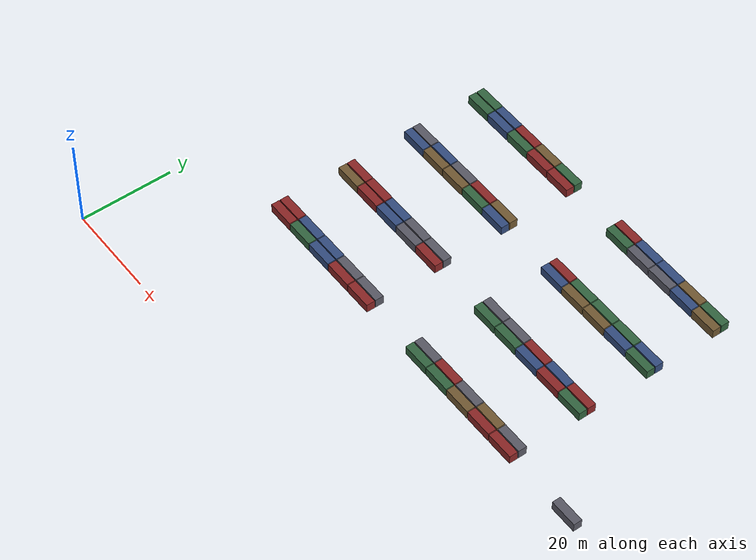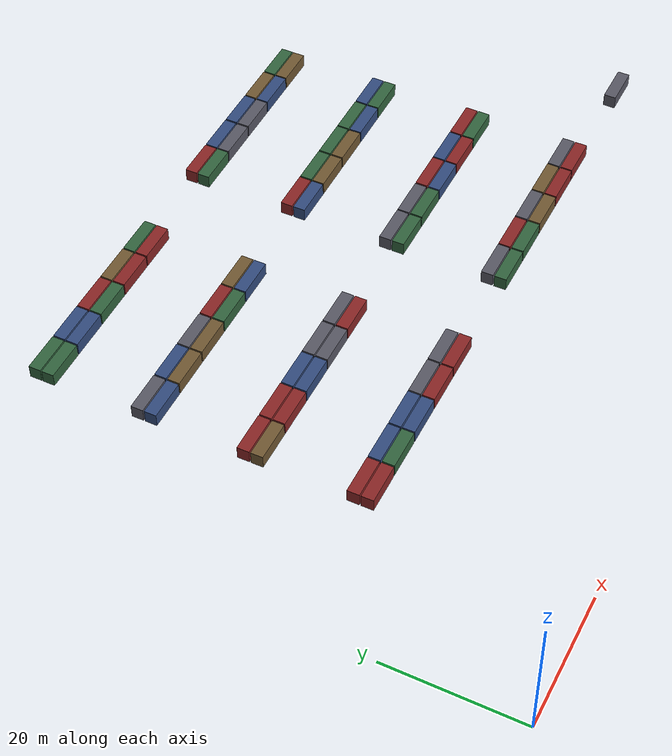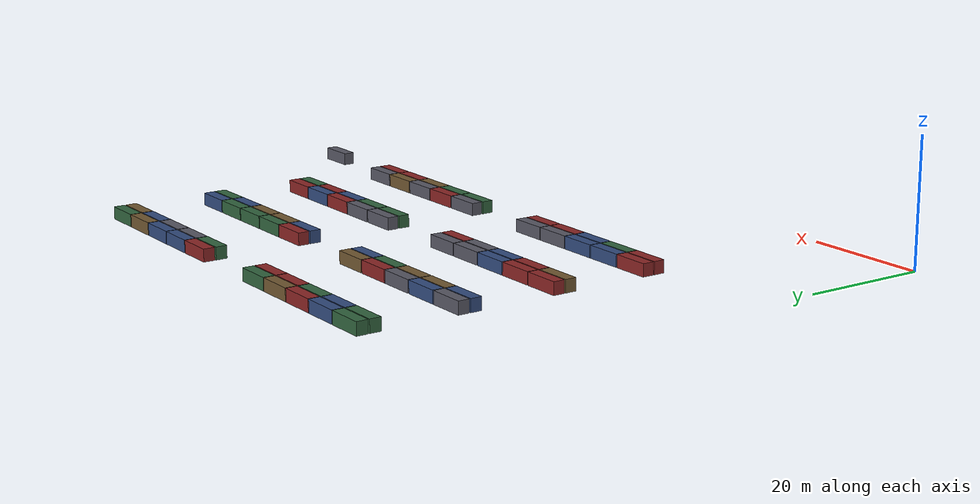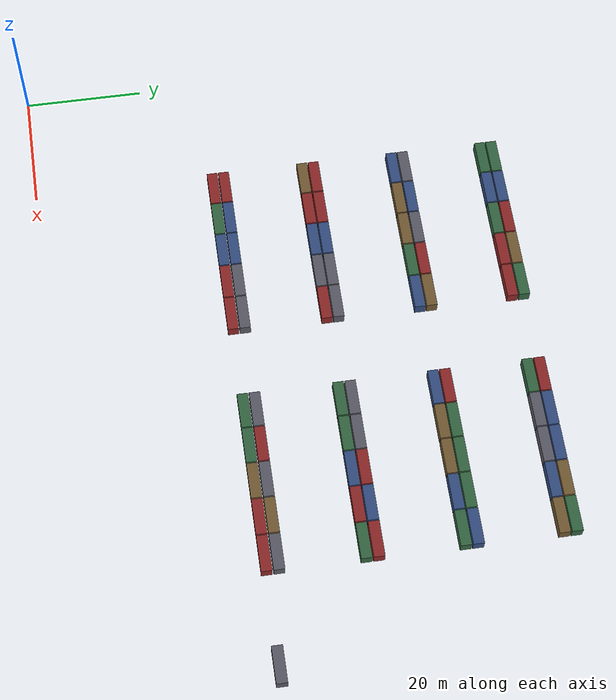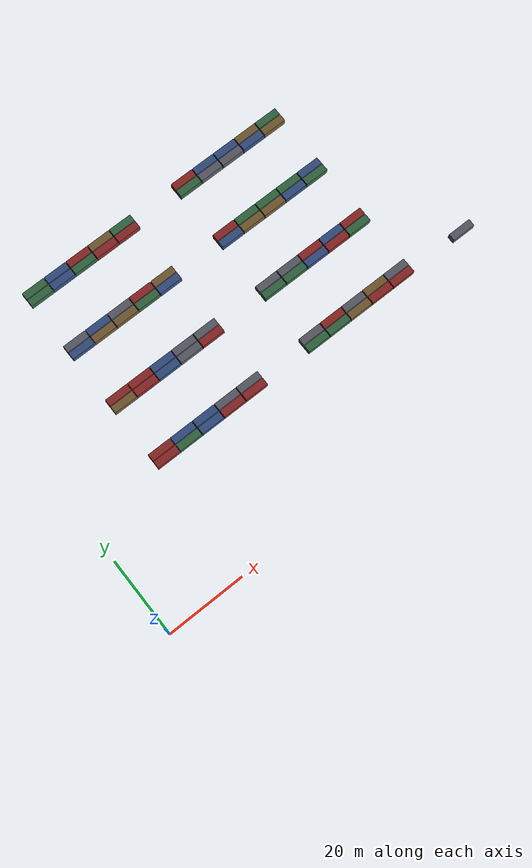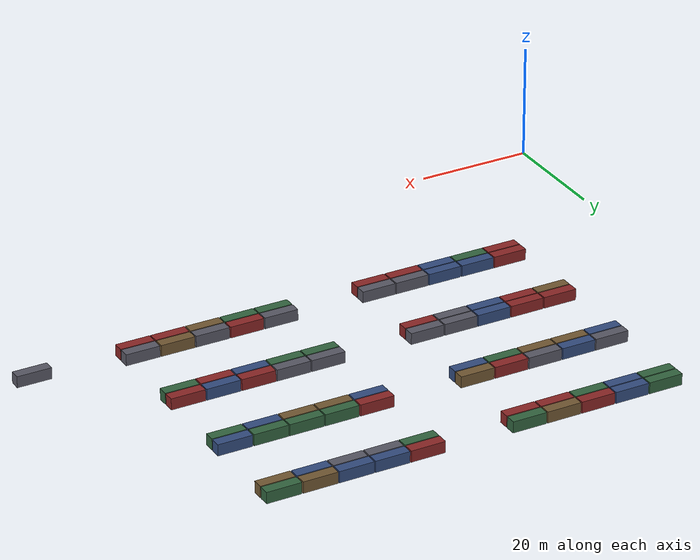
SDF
<sdf version="1.8">
 <world name="port">
  <model name="container_00_00_0_0">
   <pose>23.000 30.900 1.050 0 0 0</pose>
   <link name="link">
    <inertial>
     <mass>2300.0</mass>
     <inertia><ixx>1387.67</ixx><ixy>0</ixy><ixz>0</ixz><iyy>7666.67</iyy><iyz>0</iyz><izz>7521.0</izz></inertia>
    </inertial>
    <collision name="collision"><geometry><box><size>6.0 1.8 2.0</size></box></geometry></collision>
    <visual name="visual">
     <geometry><box><size>6.0 1.8 2.0</size></box></geometry>
     <material><ambient>0.55 0.15 0.15 1</ambient><diffuse>0.55 0.15 0.15 1</diffuse></material>
    </visual>
   </link>
  </model>
  <model name="container_00_00_0_1">
   <pose>23.000 32.900 1.050 0 0 0</pose>
   <link name="link">
    <inertial>
     <mass>2300.0</mass>
     <inertia><ixx>1387.67</ixx><ixy>0</ixy><ixz>0</ixz><iyy>7666.67</iyy><iyz>0</iyz><izz>7521.0</izz></inertia>
    </inertial>
    <collision name="collision"><geometry><box><size>6.0 1.8 2.0</size></box></geometry></collision>
    <visual name="visual">
     <geometry><box><size>6.0 1.8 2.0</size></box></geometry>
     <material><ambient>0.55 0.15 0.15 1</ambient><diffuse>0.55 0.15 0.15 1</diffuse></material>
    </visual>
   </link>
  </model>
  <model name="container_00_00_1_0">
   <pose>29.200 30.900 1.050 0 0 0</pose>
   <link name="link">
    <inertial>
     <mass>2300.0</mass>
     <inertia><ixx>1387.67</ixx><ixy>0</ixy><ixz>0</ixz><iyy>7666.67</iyy><iyz>0</iyz><izz>7521.0</izz></inertia>
    </inertial>
    <collision name="collision"><geometry><box><size>6.0 1.8 2.0</size></box></geometry></collision>
    <visual name="visual">
     <geometry><box><size>6.0 1.8 2.0</size></box></geometry>
     <material><ambient>0.2 0.4 0.25 1</ambient><diffuse>0.2 0.4 0.25 1</diffuse></material>
    </visual>
   </link>
  </model>
  <model name="container_00_00_1_1">
   <pose>29.200 32.900 1.050 0 0 0</pose>
   <link name="link">
    <inertial>
     <mass>2300.0</mass>
     <inertia><ixx>1387.67</ixx><ixy>0</ixy><ixz>0</ixz><iyy>7666.67</iyy><iyz>0</iyz><izz>7521.0</izz></inertia>
    </inertial>
    <collision name="collision"><geometry><box><size>6.0 1.8 2.0</size></box></geometry></collision>
    <visual name="visual">
     <geometry><box><size>6.0 1.8 2.0</size></box></geometry>
     <material><ambient>0.2 0.3 0.5 1</ambient><diffuse>0.2 0.3 0.5 1</diffuse></material>
    </visual>
   </link>
  </model>
  <model name="container_00_00_2_0">
   <pose>35.400 30.900 1.050 0 0 0</pose>
   <link name="link">
    <inertial>
     <mass>2300.0</mass>
     <inertia><ixx>1387.67</ixx><ixy>0</ixy><ixz>0</ixz><iyy>7666.67</iyy><iyz>0</iyz><izz>7521.0</izz></inertia>
    </inertial>
    <collision name="collision"><geometry><box><size>6.0 1.8 2.0</size></box></geometry></collision>
    <visual name="visual">
     <geometry><box><size>6.0 1.8 2.0</size></box></geometry>
     <material><ambient>0.2 0.3 0.5 1</ambient><diffuse>0.2 0.3 0.5 1</diffuse></material>
    </visual>
   </link>
  </model>
  <model name="container_00_00_2_1">
   <pose>35.400 32.900 1.050 0 0 0</pose>
   <link name="link">
    <inertial>
     <mass>2300.0</mass>
     <inertia><ixx>1387.67</ixx><ixy>0</ixy><ixz>0</ixz><iyy>7666.67</iyy><iyz>0</iyz><izz>7521.0</izz></inertia>
    </inertial>
    <collision name="collision"><geometry><box><size>6.0 1.8 2.0</size></box></geometry></collision>
    <visual name="visual">
     <geometry><box><size>6.0 1.8 2.0</size></box></geometry>
     <material><ambient>0.2 0.3 0.5 1</ambient><diffuse>0.2 0.3 0.5 1</diffuse></material>
    </visual>
   </link>
  </model>
  <model name="container_00_00_3_0">
   <pose>41.600 30.900 1.050 0 0 0</pose>
   <link name="link">
    <inertial>
     <mass>2300.0</mass>
     <inertia><ixx>1387.67</ixx><ixy>0</ixy><ixz>0</ixz><iyy>7666.67</iyy><iyz>0</iyz><izz>7521.0</izz></inertia>
    </inertial>
    <collision name="collision"><geometry><box><size>6.0 1.8 2.0</size></box></geometry></collision>
    <visual name="visual">
     <geometry><box><size>6.0 1.8 2.0</size></box></geometry>
     <material><ambient>0.55 0.15 0.15 1</ambient><diffuse>0.55 0.15 0.15 1</diffuse></material>
    </visual>
   </link>
  </model>
  <model name="container_00_00_3_1">
   <pose>41.600 32.900 1.050 0 0 0</pose>
   <link name="link">
    <inertial>
     <mass>2300.0</mass>
     <inertia><ixx>1387.67</ixx><ixy>0</ixy><ixz>0</ixz><iyy>7666.67</iyy><iyz>0</iyz><izz>7521.0</izz></inertia>
    </inertial>
    <collision name="collision"><geometry><box><size>6.0 1.8 2.0</size></box></geometry></collision>
    <visual name="visual">
     <geometry><box><size>6.0 1.8 2.0</size></box></geometry>
     <material><ambient>0.35 0.35 0.4 1</ambient><diffuse>0.35 0.35 0.4 1</diffuse></material>
    </visual>
   </link>
  </model>
  <model name="container_00_00_4_0">
   <pose>47.800 30.900 1.050 0 0 0</pose>
   <link name="link">
    <inertial>
     <mass>2300.0</mass>
     <inertia><ixx>1387.67</ixx><ixy>0</ixy><ixz>0</ixz><iyy>7666.67</iyy><iyz>0</iyz><izz>7521.0</izz></inertia>
    </inertial>
    <collision name="collision"><geometry><box><size>6.0 1.8 2.0</size></box></geometry></collision>
    <visual name="visual">
     <geometry><box><size>6.0 1.8 2.0</size></box></geometry>
     <material><ambient>0.55 0.15 0.15 1</ambient><diffuse>0.55 0.15 0.15 1</diffuse></material>
    </visual>
   </link>
  </model>
  <model name="container_00_00_4_1">
   <pose>47.800 32.900 1.050 0 0 0</pose>
   <link name="link">
    <inertial>
     <mass>2300.0</mass>
     <inertia><ixx>1387.67</ixx><ixy>0</ixy><ixz>0</ixz><iyy>7666.67</iyy><iyz>0</iyz><izz>7521.0</izz></inertia>
    </inertial>
    <collision name="collision"><geometry><box><size>6.0 1.8 2.0</size></box></geometry></collision>
    <visual name="visual">
     <geometry><box><size>6.0 1.8 2.0</size></box></geometry>
     <material><ambient>0.35 0.35 0.4 1</ambient><diffuse>0.35 0.35 0.4 1</diffuse></material>
    </visual>
   </link>
  </model>
  <model name="container_00_01_0_0">
   <pose>23.000 46.700 1.050 0 0 0</pose>
   <link name="link">
    <inertial>
     <mass>2300.0</mass>
     <inertia><ixx>1387.67</ixx><ixy>0</ixy><ixz>0</ixz><iyy>7666.67</iyy><iyz>0</iyz><izz>7521.0</izz></inertia>
    </inertial>
    <collision name="collision"><geometry><box><size>6.0 1.8 2.0</size></box></geometry></collision>
    <visual name="visual">
     <geometry><box><size>6.0 1.8 2.0</size></box></geometry>
     <material><ambient>0.45 0.35 0.2 1</ambient><diffuse>0.45 0.35 0.2 1</diffuse></material>
    </visual>
   </link>
  </model>
  <model name="container_00_01_0_1">
   <pose>23.000 48.700 1.050 0 0 0</pose>
   <link name="link">
    <inertial>
     <mass>2300.0</mass>
     <inertia><ixx>1387.67</ixx><ixy>0</ixy><ixz>0</ixz><iyy>7666.67</iyy><iyz>0</iyz><izz>7521.0</izz></inertia>
    </inertial>
    <collision name="collision"><geometry><box><size>6.0 1.8 2.0</size></box></geometry></collision>
    <visual name="visual">
     <geometry><box><size>6.0 1.8 2.0</size></box></geometry>
     <material><ambient>0.55 0.15 0.15 1</ambient><diffuse>0.55 0.15 0.15 1</diffuse></material>
    </visual>
   </link>
  </model>
  <model name="container_00_01_1_0">
   <pose>29.200 46.700 1.050 0 0 0</pose>
   <link name="link">
    <inertial>
     <mass>2300.0</mass>
     <inertia><ixx>1387.67</ixx><ixy>0</ixy><ixz>0</ixz><iyy>7666.67</iyy><iyz>0</iyz><izz>7521.0</izz></inertia>
    </inertial>
    <collision name="collision"><geometry><box><size>6.0 1.8 2.0</size></box></geometry></collision>
    <visual name="visual">
     <geometry><box><size>6.0 1.8 2.0</size></box></geometry>
     <material><ambient>0.55 0.15 0.15 1</ambient><diffuse>0.55 0.15 0.15 1</diffuse></material>
    </visual>
   </link>
  </model>
  <model name="container_00_01_1_1">
   <pose>29.200 48.700 1.050 0 0 0</pose>
   <link name="link">
    <inertial>
     <mass>2300.0</mass>
     <inertia><ixx>1387.67</ixx><ixy>0</ixy><ixz>0</ixz><iyy>7666.67</iyy><iyz>0</iyz><izz>7521.0</izz></inertia>
    </inertial>
    <collision name="collision"><geometry><box><size>6.0 1.8 2.0</size></box></geometry></collision>
    <visual name="visual">
     <geometry><box><size>6.0 1.8 2.0</size></box></geometry>
     <material><ambient>0.55 0.15 0.15 1</ambient><diffuse>0.55 0.15 0.15 1</diffuse></material>
    </visual>
   </link>
  </model>
  <model name="container_00_01_2_0">
   <pose>35.400 46.700 1.050 0 0 0</pose>
   <link name="link">
    <inertial>
     <mass>2300.0</mass>
     <inertia><ixx>1387.67</ixx><ixy>0</ixy><ixz>0</ixz><iyy>7666.67</iyy><iyz>0</iyz><izz>7521.0</izz></inertia>
    </inertial>
    <collision name="collision"><geometry><box><size>6.0 1.8 2.0</size></box></geometry></collision>
    <visual name="visual">
     <geometry><box><size>6.0 1.8 2.0</size></box></geometry>
     <material><ambient>0.2 0.3 0.5 1</ambient><diffuse>0.2 0.3 0.5 1</diffuse></material>
    </visual>
   </link>
  </model>
  <model name="container_00_01_2_1">
   <pose>35.400 48.700 1.050 0 0 0</pose>
   <link name="link">
    <inertial>
     <mass>2300.0</mass>
     <inertia><ixx>1387.67</ixx><ixy>0</ixy><ixz>0</ixz><iyy>7666.67</iyy><iyz>0</iyz><izz>7521.0</izz></inertia>
    </inertial>
    <collision name="collision"><geometry><box><size>6.0 1.8 2.0</size></box></geometry></collision>
    <visual name="visual">
     <geometry><box><size>6.0 1.8 2.0</size></box></geometry>
     <material><ambient>0.2 0.3 0.5 1</ambient><diffuse>0.2 0.3 0.5 1</diffuse></material>
    </visual>
   </link>
  </model>
  <model name="container_00_01_3_0">
   <pose>41.600 46.700 1.050 0 0 0</pose>
   <link name="link">
    <inertial>
     <mass>2300.0</mass>
     <inertia><ixx>1387.67</ixx><ixy>0</ixy><ixz>0</ixz><iyy>7666.67</iyy><iyz>0</iyz><izz>7521.0</izz></inertia>
    </inertial>
    <collision name="collision"><geometry><box><size>6.0 1.8 2.0</size></box></geometry></collision>
    <visual name="visual">
     <geometry><box><size>6.0 1.8 2.0</size></box></geometry>
     <material><ambient>0.35 0.35 0.4 1</ambient><diffuse>0.35 0.35 0.4 1</diffuse></material>
    </visual>
   </link>
  </model>
  <model name="container_00_01_3_1">
   <pose>41.600 48.700 1.050 0 0 0</pose>
   <link name="link">
    <inertial>
     <mass>2300.0</mass>
     <inertia><ixx>1387.67</ixx><ixy>0</ixy><ixz>0</ixz><iyy>7666.67</iyy><iyz>0</iyz><izz>7521.0</izz></inertia>
    </inertial>
    <collision name="collision"><geometry><box><size>6.0 1.8 2.0</size></box></geometry></collision>
    <visual name="visual">
     <geometry><box><size>6.0 1.8 2.0</size></box></geometry>
     <material><ambient>0.35 0.35 0.4 1</ambient><diffuse>0.35 0.35 0.4 1</diffuse></material>
    </visual>
   </link>
  </model>
  <model name="container_00_01_4_0">
   <pose>47.800 46.700 1.050 0 0 0</pose>
   <link name="link">
    <inertial>
     <mass>2300.0</mass>
     <inertia><ixx>1387.67</ixx><ixy>0</ixy><ixz>0</ixz><iyy>7666.67</iyy><iyz>0</iyz><izz>7521.0</izz></inertia>
    </inertial>
    <collision name="collision"><geometry><box><size>6.0 1.8 2.0</size></box></geometry></collision>
    <visual name="visual">
     <geometry><box><size>6.0 1.8 2.0</size></box></geometry>
     <material><ambient>0.55 0.15 0.15 1</ambient><diffuse>0.55 0.15 0.15 1</diffuse></material>
    </visual>
   </link>
  </model>
  <model name="container_00_01_4_1">
   <pose>47.800 48.700 1.050 0 0 0</pose>
   <link name="link">
    <inertial>
     <mass>2300.0</mass>
     <inertia><ixx>1387.67</ixx><ixy>0</ixy><ixz>0</ixz><iyy>7666.67</iyy><iyz>0</iyz><izz>7521.0</izz></inertia>
    </inertial>
    <collision name="collision"><geometry><box><size>6.0 1.8 2.0</size></box></geometry></collision>
    <visual name="visual">
     <geometry><box><size>6.0 1.8 2.0</size></box></geometry>
     <material><ambient>0.35 0.35 0.4 1</ambient><diffuse>0.35 0.35 0.4 1</diffuse></material>
    </visual>
   </link>
  </model>
  <model name="container_00_02_0_0">
   <pose>23.000 62.500 1.050 0 0 0</pose>
   <link name="link">
    <inertial>
     <mass>2300.0</mass>
     <inertia><ixx>1387.67</ixx><ixy>0</ixy><ixz>0</ixz><iyy>7666.67</iyy><iyz>0</iyz><izz>7521.0</izz></inertia>
    </inertial>
    <collision name="collision"><geometry><box><size>6.0 1.8 2.0</size></box></geometry></collision>
    <visual name="visual">
     <geometry><box><size>6.0 1.8 2.0</size></box></geometry>
     <material><ambient>0.2 0.3 0.5 1</ambient><diffuse>0.2 0.3 0.5 1</diffuse></material>
    </visual>
   </link>
  </model>
  <model name="container_00_02_0_1">
   <pose>23.000 64.500 1.050 0 0 0</pose>
   <link name="link">
    <inertial>
     <mass>2300.0</mass>
     <inertia><ixx>1387.67</ixx><ixy>0</ixy><ixz>0</ixz><iyy>7666.67</iyy><iyz>0</iyz><izz>7521.0</izz></inertia>
    </inertial>
    <collision name="collision"><geometry><box><size>6.0 1.8 2.0</size></box></geometry></collision>
    <visual name="visual">
     <geometry><box><size>6.0 1.8 2.0</size></box></geometry>
     <material><ambient>0.35 0.35 0.4 1</ambient><diffuse>0.35 0.35 0.4 1</diffuse></material>
    </visual>
   </link>
  </model>
  <model name="container_00_02_1_0">
   <pose>29.200 62.500 1.050 0 0 0</pose>
   <link name="link">
    <inertial>
     <mass>2300.0</mass>
     <inertia><ixx>1387.67</ixx><ixy>0</ixy><ixz>0</ixz><iyy>7666.67</iyy><iyz>0</iyz><izz>7521.0</izz></inertia>
    </inertial>
    <collision name="collision"><geometry><box><size>6.0 1.8 2.0</size></box></geometry></collision>
    <visual name="visual">
     <geometry><box><size>6.0 1.8 2.0</size></box></geometry>
     <material><ambient>0.45 0.35 0.2 1</ambient><diffuse>0.45 0.35 0.2 1</diffuse></material>
    </visual>
   </link>
  </model>
  <model name="container_00_02_1_1">
   <pose>29.200 64.500 1.050 0 0 0</pose>
   <link name="link">
    <inertial>
     <mass>2300.0</mass>
     <inertia><ixx>1387.67</ixx><ixy>0</ixy><ixz>0</ixz><iyy>7666.67</iyy><iyz>0</iyz><izz>7521.0</izz></inertia>
    </inertial>
    <collision name="collision"><geometry><box><size>6.0 1.8 2.0</size></box></geometry></collision>
    <visual name="visual">
     <geometry><box><size>6.0 1.8 2.0</size></box></geometry>
     <material><ambient>0.2 0.3 0.5 1</ambient><diffuse>0.2 0.3 0.5 1</diffuse></material>
    </visual>
   </link>
  </model>
  <model name="container_00_02_2_0">
   <pose>35.400 62.500 1.050 0 0 0</pose>
   <link name="link">
    <inertial>
     <mass>2300.0</mass>
     <inertia><ixx>1387.67</ixx><ixy>0</ixy><ixz>0</ixz><iyy>7666.67</iyy><iyz>0</iyz><izz>7521.0</izz></inertia>
    </inertial>
    <collision name="collision"><geometry><box><size>6.0 1.8 2.0</size></box></geometry></collision>
    <visual name="visual">
     <geometry><box><size>6.0 1.8 2.0</size></box></geometry>
     <material><ambient>0.45 0.35 0.2 1</ambient><diffuse>0.45 0.35 0.2 1</diffuse></material>
    </visual>
   </link>
  </model>
  <model name="container_00_02_2_1">
   <pose>35.400 64.500 1.050 0 0 0</pose>
   <link name="link">
    <inertial>
     <mass>2300.0</mass>
     <inertia><ixx>1387.67</ixx><ixy>0</ixy><ixz>0</ixz><iyy>7666.67</iyy><iyz>0</iyz><izz>7521.0</izz></inertia>
    </inertial>
    <collision name="collision"><geometry><box><size>6.0 1.8 2.0</size></box></geometry></collision>
    <visual name="visual">
     <geometry><box><size>6.0 1.8 2.0</size></box></geometry>
     <material><ambient>0.35 0.35 0.4 1</ambient><diffuse>0.35 0.35 0.4 1</diffuse></material>
    </visual>
   </link>
  </model>
  <model name="container_00_02_3_0">
   <pose>41.600 62.500 1.050 0 0 0</pose>
   <link name="link">
    <inertial>
     <mass>2300.0</mass>
     <inertia><ixx>1387.67</ixx><ixy>0</ixy><ixz>0</ixz><iyy>7666.67</iyy><iyz>0</iyz><izz>7521.0</izz></inertia>
    </inertial>
    <collision name="collision"><geometry><box><size>6.0 1.8 2.0</size></box></geometry></collision>
    <visual name="visual">
     <geometry><box><size>6.0 1.8 2.0</size></box></geometry>
     <material><ambient>0.2 0.4 0.25 1</ambient><diffuse>0.2 0.4 0.25 1</diffuse></material>
    </visual>
   </link>
  </model>
  <model name="container_00_02_3_1">
   <pose>41.600 64.500 1.050 0 0 0</pose>
   <link name="link">
    <inertial>
     <mass>2300.0</mass>
     <inertia><ixx>1387.67</ixx><ixy>0</ixy><ixz>0</ixz><iyy>7666.67</iyy><iyz>0</iyz><izz>7521.0</izz></inertia>
    </inertial>
    <collision name="collision"><geometry><box><size>6.0 1.8 2.0</size></box></geometry></collision>
    <visual name="visual">
     <geometry><box><size>6.0 1.8 2.0</size></box></geometry>
     <material><ambient>0.55 0.15 0.15 1</ambient><diffuse>0.55 0.15 0.15 1</diffuse></material>
    </visual>
   </link>
  </model>
  <model name="container_00_02_4_0">
   <pose>47.800 62.500 1.050 0 0 0</pose>
   <link name="link">
    <inertial>
     <mass>2300.0</mass>
     <inertia><ixx>1387.67</ixx><ixy>0</ixy><ixz>0</ixz><iyy>7666.67</iyy><iyz>0</iyz><izz>7521.0</izz></inertia>
    </inertial>
    <collision name="collision"><geometry><box><size>6.0 1.8 2.0</size></box></geometry></collision>
    <visual name="visual">
     <geometry><box><size>6.0 1.8 2.0</size></box></geometry>
     <material><ambient>0.2 0.3 0.5 1</ambient><diffuse>0.2 0.3 0.5 1</diffuse></material>
    </visual>
   </link>
  </model>
  <model name="container_00_02_4_1">
   <pose>47.800 64.500 1.050 0 0 0</pose>
   <link name="link">
    <inertial>
     <mass>2300.0</mass>
     <inertia><ixx>1387.67</ixx><ixy>0</ixy><ixz>0</ixz><iyy>7666.67</iyy><iyz>0</iyz><izz>7521.0</izz></inertia>
    </inertial>
    <collision name="collision"><geometry><box><size>6.0 1.8 2.0</size></box></geometry></collision>
    <visual name="visual">
     <geometry><box><size>6.0 1.8 2.0</size></box></geometry>
     <material><ambient>0.45 0.35 0.2 1</ambient><diffuse>0.45 0.35 0.2 1</diffuse></material>
    </visual>
   </link>
  </model>
  <model name="container_00_03_0_0">
   <pose>23.000 78.300 1.050 0 0 0</pose>
   <link name="link">
    <inertial>
     <mass>2300.0</mass>
     <inertia><ixx>1387.67</ixx><ixy>0</ixy><ixz>0</ixz><iyy>7666.67</iyy><iyz>0</iyz><izz>7521.0</izz></inertia>
    </inertial>
    <collision name="collision"><geometry><box><size>6.0 1.8 2.0</size></box></geometry></collision>
    <visual name="visual">
     <geometry><box><size>6.0 1.8 2.0</size></box></geometry>
     <material><ambient>0.2 0.4 0.25 1</ambient><diffuse>0.2 0.4 0.25 1</diffuse></material>
    </visual>
   </link>
  </model>
  <model name="container_00_03_0_1">
   <pose>23.000 80.300 1.050 0 0 0</pose>
   <link name="link">
    <inertial>
     <mass>2300.0</mass>
     <inertia><ixx>1387.67</ixx><ixy>0</ixy><ixz>0</ixz><iyy>7666.67</iyy><iyz>0</iyz><izz>7521.0</izz></inertia>
    </inertial>
    <collision name="collision"><geometry><box><size>6.0 1.8 2.0</size></box></geometry></collision>
    <visual name="visual">
     <geometry><box><size>6.0 1.8 2.0</size></box></geometry>
     <material><ambient>0.2 0.4 0.25 1</ambient><diffuse>0.2 0.4 0.25 1</diffuse></material>
    </visual>
   </link>
  </model>
  <model name="container_00_03_1_0">
   <pose>29.200 78.300 1.050 0 0 0</pose>
   <link name="link">
    <inertial>
     <mass>2300.0</mass>
     <inertia><ixx>1387.67</ixx><ixy>0</ixy><ixz>0</ixz><iyy>7666.67</iyy><iyz>0</iyz><izz>7521.0</izz></inertia>
    </inertial>
    <collision name="collision"><geometry><box><size>6.0 1.8 2.0</size></box></geometry></collision>
    <visual name="visual">
     <geometry><box><size>6.0 1.8 2.0</size></box></geometry>
     <material><ambient>0.2 0.3 0.5 1</ambient><diffuse>0.2 0.3 0.5 1</diffuse></material>
    </visual>
   </link>
  </model>
  <model name="container_00_03_1_1">
   <pose>29.200 80.300 1.050 0 0 0</pose>
   <link name="link">
    <inertial>
     <mass>2300.0</mass>
     <inertia><ixx>1387.67</ixx><ixy>0</ixy><ixz>0</ixz><iyy>7666.67</iyy><iyz>0</iyz><izz>7521.0</izz></inertia>
    </inertial>
    <collision name="collision"><geometry><box><size>6.0 1.8 2.0</size></box></geometry></collision>
    <visual name="visual">
     <geometry><box><size>6.0 1.8 2.0</size></box></geometry>
     <material><ambient>0.2 0.3 0.5 1</ambient><diffuse>0.2 0.3 0.5 1</diffuse></material>
    </visual>
   </link>
  </model>
  <model name="container_00_03_2_0">
   <pose>35.400 78.300 1.050 0 0 0</pose>
   <link name="link">
    <inertial>
     <mass>2300.0</mass>
     <inertia><ixx>1387.67</ixx><ixy>0</ixy><ixz>0</ixz><iyy>7666.67</iyy><iyz>0</iyz><izz>7521.0</izz></inertia>
    </inertial>
    <collision name="collision"><geometry><box><size>6.0 1.8 2.0</size></box></geometry></collision>
    <visual name="visual">
     <geometry><box><size>6.0 1.8 2.0</size></box></geometry>
     <material><ambient>0.2 0.4 0.25 1</ambient><diffuse>0.2 0.4 0.25 1</diffuse></material>
    </visual>
   </link>
  </model>
  <model name="container_00_03_2_1">
   <pose>35.400 80.300 1.050 0 0 0</pose>
   <link name="link">
    <inertial>
     <mass>2300.0</mass>
     <inertia><ixx>1387.67</ixx><ixy>0</ixy><ixz>0</ixz><iyy>7666.67</iyy><iyz>0</iyz><izz>7521.0</izz></inertia>
    </inertial>
    <collision name="collision"><geometry><box><size>6.0 1.8 2.0</size></box></geometry></collision>
    <visual name="visual">
     <geometry><box><size>6.0 1.8 2.0</size></box></geometry>
     <material><ambient>0.55 0.15 0.15 1</ambient><diffuse>0.55 0.15 0.15 1</diffuse></material>
    </visual>
   </link>
  </model>
  <model name="container_00_03_3_0">
   <pose>41.600 78.300 1.050 0 0 0</pose>
   <link name="link">
    <inertial>
     <mass>2300.0</mass>
     <inertia><ixx>1387.67</ixx><ixy>0</ixy><ixz>0</ixz><iyy>7666.67</iyy><iyz>0</iyz><izz>7521.0</izz></inertia>
    </inertial>
    <collision name="collision"><geometry><box><size>6.0 1.8 2.0</size></box></geometry></collision>
    <visual name="visual">
     <geometry><box><size>6.0 1.8 2.0</size></box></geometry>
     <material><ambient>0.55 0.15 0.15 1</ambient><diffuse>0.55 0.15 0.15 1</diffuse></material>
    </visual>
   </link>
  </model>
  <model name="container_00_03_3_1">
   <pose>41.600 80.300 1.050 0 0 0</pose>
   <link name="link">
    <inertial>
     <mass>2300.0</mass>
     <inertia><ixx>1387.67</ixx><ixy>0</ixy><ixz>0</ixz><iyy>7666.67</iyy><iyz>0</iyz><izz>7521.0</izz></inertia>
    </inertial>
    <collision name="collision"><geometry><box><size>6.0 1.8 2.0</size></box></geometry></collision>
    <visual name="visual">
     <geometry><box><size>6.0 1.8 2.0</size></box></geometry>
     <material><ambient>0.45 0.35 0.2 1</ambient><diffuse>0.45 0.35 0.2 1</diffuse></material>
    </visual>
   </link>
  </model>
  <model name="container_00_03_4_0">
   <pose>47.800 78.300 1.050 0 0 0</pose>
   <link name="link">
    <inertial>
     <mass>2300.0</mass>
     <inertia><ixx>1387.67</ixx><ixy>0</ixy><ixz>0</ixz><iyy>7666.67</iyy><iyz>0</iyz><izz>7521.0</izz></inertia>
    </inertial>
    <collision name="collision"><geometry><box><size>6.0 1.8 2.0</size></box></geometry></collision>
    <visual name="visual">
     <geometry><box><size>6.0 1.8 2.0</size></box></geometry>
     <material><ambient>0.55 0.15 0.15 1</ambient><diffuse>0.55 0.15 0.15 1</diffuse></material>
    </visual>
   </link>
  </model>
  <model name="container_00_03_4_1">
   <pose>47.800 80.300 1.050 0 0 0</pose>
   <link name="link">
    <inertial>
     <mass>2300.0</mass>
     <inertia><ixx>1387.67</ixx><ixy>0</ixy><ixz>0</ixz><iyy>7666.67</iyy><iyz>0</iyz><izz>7521.0</izz></inertia>
    </inertial>
    <collision name="collision"><geometry><box><size>6.0 1.8 2.0</size></box></geometry></collision>
    <visual name="visual">
     <geometry><box><size>6.0 1.8 2.0</size></box></geometry>
     <material><ambient>0.2 0.4 0.25 1</ambient><diffuse>0.2 0.4 0.25 1</diffuse></material>
    </visual>
   </link>
  </model>
  <model name="container_01_00_0_0">
   <pose>65.800 30.900 1.050 0 0 0</pose>
   <link name="link">
    <inertial>
     <mass>2300.0</mass>
     <inertia><ixx>1387.67</ixx><ixy>0</ixy><ixz>0</ixz><iyy>7666.67</iyy><iyz>0</iyz><izz>7521.0</izz></inertia>
    </inertial>
    <collision name="collision"><geometry><box><size>6.0 1.8 2.0</size></box></geometry></collision>
    <visual name="visual">
     <geometry><box><size>6.0 1.8 2.0</size></box></geometry>
     <material><ambient>0.2 0.4 0.25 1</ambient><diffuse>0.2 0.4 0.25 1</diffuse></material>
    </visual>
   </link>
  </model>
  <model name="container_01_00_0_1">
   <pose>65.800 32.900 1.050 0 0 0</pose>
   <link name="link">
    <inertial>
     <mass>2300.0</mass>
     <inertia><ixx>1387.67</ixx><ixy>0</ixy><ixz>0</ixz><iyy>7666.67</iyy><iyz>0</iyz><izz>7521.0</izz></inertia>
    </inertial>
    <collision name="collision"><geometry><box><size>6.0 1.8 2.0</size></box></geometry></collision>
    <visual name="visual">
     <geometry><box><size>6.0 1.8 2.0</size></box></geometry>
     <material><ambient>0.35 0.35 0.4 1</ambient><diffuse>0.35 0.35 0.4 1</diffuse></material>
    </visual>
   </link>
  </model>
  <model name="container_01_00_1_0">
   <pose>72.000 30.900 1.050 0 0 0</pose>
   <link name="link">
    <inertial>
     <mass>2300.0</mass>
     <inertia><ixx>1387.67</ixx><ixy>0</ixy><ixz>0</ixz><iyy>7666.67</iyy><iyz>0</iyz><izz>7521.0</izz></inertia>
    </inertial>
    <collision name="collision"><geometry><box><size>6.0 1.8 2.0</size></box></geometry></collision>
    <visual name="visual">
     <geometry><box><size>6.0 1.8 2.0</size></box></geometry>
     <material><ambient>0.2 0.4 0.25 1</ambient><diffuse>0.2 0.4 0.25 1</diffuse></material>
    </visual>
   </link>
  </model>
  <model name="container_01_00_1_1">
   <pose>72.000 32.900 1.050 0 0 0</pose>
   <link name="link">
    <inertial>
     <mass>2300.0</mass>
     <inertia><ixx>1387.67</ixx><ixy>0</ixy><ixz>0</ixz><iyy>7666.67</iyy><iyz>0</iyz><izz>7521.0</izz></inertia>
    </inertial>
    <collision name="collision"><geometry><box><size>6.0 1.8 2.0</size></box></geometry></collision>
    <visual name="visual">
     <geometry><box><size>6.0 1.8 2.0</size></box></geometry>
     <material><ambient>0.55 0.15 0.15 1</ambient><diffuse>0.55 0.15 0.15 1</diffuse></material>
    </visual>
   </link>
  </model>
  <model name="container_01_00_2_0">
   <pose>78.200 30.900 1.050 0 0 0</pose>
   <link name="link">
    <inertial>
     <mass>2300.0</mass>
     <inertia><ixx>1387.67</ixx><ixy>0</ixy><ixz>0</ixz><iyy>7666.67</iyy><iyz>0</iyz><izz>7521.0</izz></inertia>
    </inertial>
    <collision name="collision"><geometry><box><size>6.0 1.8 2.0</size></box></geometry></collision>
    <visual name="visual">
     <geometry><box><size>6.0 1.8 2.0</size></box></geometry>
     <material><ambient>0.45 0.35 0.2 1</ambient><diffuse>0.45 0.35 0.2 1</diffuse></material>
    </visual>
   </link>
  </model>
  <model name="container_01_00_2_1">
   <pose>78.200 32.900 1.050 0 0 0</pose>
   <link name="link">
    <inertial>
     <mass>2300.0</mass>
     <inertia><ixx>1387.67</ixx><ixy>0</ixy><ixz>0</ixz><iyy>7666.67</iyy><iyz>0</iyz><izz>7521.0</izz></inertia>
    </inertial>
    <collision name="collision"><geometry><box><size>6.0 1.8 2.0</size></box></geometry></collision>
    <visual name="visual">
     <geometry><box><size>6.0 1.8 2.0</size></box></geometry>
     <material><ambient>0.35 0.35 0.4 1</ambient><diffuse>0.35 0.35 0.4 1</diffuse></material>
    </visual>
   </link>
  </model>
  <model name="container_01_00_3_0">
   <pose>84.400 30.900 1.050 0 0 0</pose>
   <link name="link">
    <inertial>
     <mass>2300.0</mass>
     <inertia><ixx>1387.67</ixx><ixy>0</ixy><ixz>0</ixz><iyy>7666.67</iyy><iyz>0</iyz><izz>7521.0</izz></inertia>
    </inertial>
    <collision name="collision"><geometry><box><size>6.0 1.8 2.0</size></box></geometry></collision>
    <visual name="visual">
     <geometry><box><size>6.0 1.8 2.0</size></box></geometry>
     <material><ambient>0.55 0.15 0.15 1</ambient><diffuse>0.55 0.15 0.15 1</diffuse></material>
    </visual>
   </link>
  </model>
  <model name="container_01_00_3_1">
   <pose>84.400 32.900 1.050 0 0 0</pose>
   <link name="link">
    <inertial>
     <mass>2300.0</mass>
     <inertia><ixx>1387.67</ixx><ixy>0</ixy><ixz>0</ixz><iyy>7666.67</iyy><iyz>0</iyz><izz>7521.0</izz></inertia>
    </inertial>
    <collision name="collision"><geometry><box><size>6.0 1.8 2.0</size></box></geometry></collision>
    <visual name="visual">
     <geometry><box><size>6.0 1.8 2.0</size></box></geometry>
     <material><ambient>0.45 0.35 0.2 1</ambient><diffuse>0.45 0.35 0.2 1</diffuse></material>
    </visual>
   </link>
  </model>
  <model name="container_01_00_4_0">
   <pose>90.600 30.900 1.050 0 0 0</pose>
   <link name="link">
    <inertial>
     <mass>2300.0</mass>
     <inertia><ixx>1387.67</ixx><ixy>0</ixy><ixz>0</ixz><iyy>7666.67</iyy><iyz>0</iyz><izz>7521.0</izz></inertia>
    </inertial>
    <collision name="collision"><geometry><box><size>6.0 1.8 2.0</size></box></geometry></collision>
    <visual name="visual">
     <geometry><box><size>6.0 1.8 2.0</size></box></geometry>
     <material><ambient>0.55 0.15 0.15 1</ambient><diffuse>0.55 0.15 0.15 1</diffuse></material>
    </visual>
   </link>
  </model>
  <model name="container_01_00_4_1">
   <pose>90.600 32.900 1.050 0 0 0</pose>
   <link name="link">
    <inertial>
     <mass>2300.0</mass>
     <inertia><ixx>1387.67</ixx><ixy>0</ixy><ixz>0</ixz><iyy>7666.67</iyy><iyz>0</iyz><izz>7521.0</izz></inertia>
    </inertial>
    <collision name="collision"><geometry><box><size>6.0 1.8 2.0</size></box></geometry></collision>
    <visual name="visual">
     <geometry><box><size>6.0 1.8 2.0</size></box></geometry>
     <material><ambient>0.35 0.35 0.4 1</ambient><diffuse>0.35 0.35 0.4 1</diffuse></material>
    </visual>
   </link>
  </model>
  <model name="container_01_01_0_0">
   <pose>65.800 46.700 1.050 0 0 0</pose>
   <link name="link">
    <inertial>
     <mass>2300.0</mass>
     <inertia><ixx>1387.67</ixx><ixy>0</ixy><ixz>0</ixz><iyy>7666.67</iyy><iyz>0</iyz><izz>7521.0</izz></inertia>
    </inertial>
    <collision name="collision"><geometry><box><size>6.0 1.8 2.0</size></box></geometry></collision>
    <visual name="visual">
     <geometry><box><size>6.0 1.8 2.0</size></box></geometry>
     <material><ambient>0.2 0.4 0.25 1</ambient><diffuse>0.2 0.4 0.25 1</diffuse></material>
    </visual>
   </link>
  </model>
  <model name="container_01_01_0_1">
   <pose>65.800 48.700 1.050 0 0 0</pose>
   <link name="link">
    <inertial>
     <mass>2300.0</mass>
     <inertia><ixx>1387.67</ixx><ixy>0</ixy><ixz>0</ixz><iyy>7666.67</iyy><iyz>0</iyz><izz>7521.0</izz></inertia>
    </inertial>
    <collision name="collision"><geometry><box><size>6.0 1.8 2.0</size></box></geometry></collision>
    <visual name="visual">
     <geometry><box><size>6.0 1.8 2.0</size></box></geometry>
     <material><ambient>0.35 0.35 0.4 1</ambient><diffuse>0.35 0.35 0.4 1</diffuse></material>
    </visual>
   </link>
  </model>
  <model name="container_01_01_1_0">
   <pose>72.000 46.700 1.050 0 0 0</pose>
   <link name="link">
    <inertial>
     <mass>2300.0</mass>
     <inertia><ixx>1387.67</ixx><ixy>0</ixy><ixz>0</ixz><iyy>7666.67</iyy><iyz>0</iyz><izz>7521.0</izz></inertia>
    </inertial>
    <collision name="collision"><geometry><box><size>6.0 1.8 2.0</size></box></geometry></collision>
    <visual name="visual">
     <geometry><box><size>6.0 1.8 2.0</size></box></geometry>
     <material><ambient>0.2 0.4 0.25 1</ambient><diffuse>0.2 0.4 0.25 1</diffuse></material>
    </visual>
   </link>
  </model>
  <model name="container_01_01_1_1">
   <pose>72.000 48.700 1.050 0 0 0</pose>
   <link name="link">
    <inertial>
     <mass>2300.0</mass>
     <inertia><ixx>1387.67</ixx><ixy>0</ixy><ixz>0</ixz><iyy>7666.67</iyy><iyz>0</iyz><izz>7521.0</izz></inertia>
    </inertial>
    <collision name="collision"><geometry><box><size>6.0 1.8 2.0</size></box></geometry></collision>
    <visual name="visual">
     <geometry><box><size>6.0 1.8 2.0</size></box></geometry>
     <material><ambient>0.35 0.35 0.4 1</ambient><diffuse>0.35 0.35 0.4 1</diffuse></material>
    </visual>
   </link>
  </model>
  <model name="container_01_01_2_0">
   <pose>78.200 46.700 1.050 0 0 0</pose>
   <link name="link">
    <inertial>
     <mass>2300.0</mass>
     <inertia><ixx>1387.67</ixx><ixy>0</ixy><ixz>0</ixz><iyy>7666.67</iyy><iyz>0</iyz><izz>7521.0</izz></inertia>
    </inertial>
    <collision name="collision"><geometry><box><size>6.0 1.8 2.0</size></box></geometry></collision>
    <visual name="visual">
     <geometry><box><size>6.0 1.8 2.0</size></box></geometry>
     <material><ambient>0.2 0.3 0.5 1</ambient><diffuse>0.2 0.3 0.5 1</diffuse></material>
    </visual>
   </link>
  </model>
  <model name="container_01_01_2_1">
   <pose>78.200 48.700 1.050 0 0 0</pose>
   <link name="link">
    <inertial>
     <mass>2300.0</mass>
     <inertia><ixx>1387.67</ixx><ixy>0</ixy><ixz>0</ixz><iyy>7666.67</iyy><iyz>0</iyz><izz>7521.0</izz></inertia>
    </inertial>
    <collision name="collision"><geometry><box><size>6.0 1.8 2.0</size></box></geometry></collision>
    <visual name="visual">
     <geometry><box><size>6.0 1.8 2.0</size></box></geometry>
     <material><ambient>0.55 0.15 0.15 1</ambient><diffuse>0.55 0.15 0.15 1</diffuse></material>
    </visual>
   </link>
  </model>
  <model name="container_01_01_3_0">
   <pose>84.400 46.700 1.050 0 0 0</pose>
   <link name="link">
    <inertial>
     <mass>2300.0</mass>
     <inertia><ixx>1387.67</ixx><ixy>0</ixy><ixz>0</ixz><iyy>7666.67</iyy><iyz>0</iyz><izz>7521.0</izz></inertia>
    </inertial>
    <collision name="collision"><geometry><box><size>6.0 1.8 2.0</size></box></geometry></collision>
    <visual name="visual">
     <geometry><box><size>6.0 1.8 2.0</size></box></geometry>
     <material><ambient>0.55 0.15 0.15 1</ambient><diffuse>0.55 0.15 0.15 1</diffuse></material>
    </visual>
   </link>
  </model>
  <model name="container_01_01_3_1">
   <pose>84.400 48.700 1.050 0 0 0</pose>
   <link name="link">
    <inertial>
     <mass>2300.0</mass>
     <inertia><ixx>1387.67</ixx><ixy>0</ixy><ixz>0</ixz><iyy>7666.67</iyy><iyz>0</iyz><izz>7521.0</izz></inertia>
    </inertial>
    <collision name="collision"><geometry><box><size>6.0 1.8 2.0</size></box></geometry></collision>
    <visual name="visual">
     <geometry><box><size>6.0 1.8 2.0</size></box></geometry>
     <material><ambient>0.2 0.3 0.5 1</ambient><diffuse>0.2 0.3 0.5 1</diffuse></material>
    </visual>
   </link>
  </model>
  <model name="container_01_01_4_0">
   <pose>90.600 46.700 1.050 0 0 0</pose>
   <link name="link">
    <inertial>
     <mass>2300.0</mass>
     <inertia><ixx>1387.67</ixx><ixy>0</ixy><ixz>0</ixz><iyy>7666.67</iyy><iyz>0</iyz><izz>7521.0</izz></inertia>
    </inertial>
    <collision name="collision"><geometry><box><size>6.0 1.8 2.0</size></box></geometry></collision>
    <visual name="visual">
     <geometry><box><size>6.0 1.8 2.0</size></box></geometry>
     <material><ambient>0.2 0.4 0.25 1</ambient><diffuse>0.2 0.4 0.25 1</diffuse></material>
    </visual>
   </link>
  </model>
  <model name="container_01_01_4_1">
   <pose>90.600 48.700 1.050 0 0 0</pose>
   <link name="link">
    <inertial>
     <mass>2300.0</mass>
     <inertia><ixx>1387.67</ixx><ixy>0</ixy><ixz>0</ixz><iyy>7666.67</iyy><iyz>0</iyz><izz>7521.0</izz></inertia>
    </inertial>
    <collision name="collision"><geometry><box><size>6.0 1.8 2.0</size></box></geometry></collision>
    <visual name="visual">
     <geometry><box><size>6.0 1.8 2.0</size></box></geometry>
     <material><ambient>0.55 0.15 0.15 1</ambient><diffuse>0.55 0.15 0.15 1</diffuse></material>
    </visual>
   </link>
  </model>
  <model name="container_01_02_0_0">
   <pose>65.800 62.500 1.050 0 0 0</pose>
   <link name="link">
    <inertial>
     <mass>2300.0</mass>
     <inertia><ixx>1387.67</ixx><ixy>0</ixy><ixz>0</ixz><iyy>7666.67</iyy><iyz>0</iyz><izz>7521.0</izz></inertia>
    </inertial>
    <collision name="collision"><geometry><box><size>6.0 1.8 2.0</size></box></geometry></collision>
    <visual name="visual">
     <geometry><box><size>6.0 1.8 2.0</size></box></geometry>
     <material><ambient>0.2 0.3 0.5 1</ambient><diffuse>0.2 0.3 0.5 1</diffuse></material>
    </visual>
   </link>
  </model>
  <model name="container_01_02_0_1">
   <pose>65.800 64.500 1.050 0 0 0</pose>
   <link name="link">
    <inertial>
     <mass>2300.0</mass>
     <inertia><ixx>1387.67</ixx><ixy>0</ixy><ixz>0</ixz><iyy>7666.67</iyy><iyz>0</iyz><izz>7521.0</izz></inertia>
    </inertial>
    <collision name="collision"><geometry><box><size>6.0 1.8 2.0</size></box></geometry></collision>
    <visual name="visual">
     <geometry><box><size>6.0 1.8 2.0</size></box></geometry>
     <material><ambient>0.55 0.15 0.15 1</ambient><diffuse>0.55 0.15 0.15 1</diffuse></material>
    </visual>
   </link>
  </model>
  <model name="container_01_02_1_0">
   <pose>72.000 62.500 1.050 0 0 0</pose>
   <link name="link">
    <inertial>
     <mass>2300.0</mass>
     <inertia><ixx>1387.67</ixx><ixy>0</ixy><ixz>0</ixz><iyy>7666.67</iyy><iyz>0</iyz><izz>7521.0</izz></inertia>
    </inertial>
    <collision name="collision"><geometry><box><size>6.0 1.8 2.0</size></box></geometry></collision>
    <visual name="visual">
     <geometry><box><size>6.0 1.8 2.0</size></box></geometry>
     <material><ambient>0.45 0.35 0.2 1</ambient><diffuse>0.45 0.35 0.2 1</diffuse></material>
    </visual>
   </link>
  </model>
  <model name="container_01_02_1_1">
   <pose>72.000 64.500 1.050 0 0 0</pose>
   <link name="link">
    <inertial>
     <mass>2300.0</mass>
     <inertia><ixx>1387.67</ixx><ixy>0</ixy><ixz>0</ixz><iyy>7666.67</iyy><iyz>0</iyz><izz>7521.0</izz></inertia>
    </inertial>
    <collision name="collision"><geometry><box><size>6.0 1.8 2.0</size></box></geometry></collision>
    <visual name="visual">
     <geometry><box><size>6.0 1.8 2.0</size></box></geometry>
     <material><ambient>0.2 0.4 0.25 1</ambient><diffuse>0.2 0.4 0.25 1</diffuse></material>
    </visual>
   </link>
  </model>
  <model name="container_01_02_2_0">
   <pose>78.200 62.500 1.050 0 0 0</pose>
   <link name="link">
    <inertial>
     <mass>2300.0</mass>
     <inertia><ixx>1387.67</ixx><ixy>0</ixy><ixz>0</ixz><iyy>7666.67</iyy><iyz>0</iyz><izz>7521.0</izz></inertia>
    </inertial>
    <collision name="collision"><geometry><box><size>6.0 1.8 2.0</size></box></geometry></collision>
    <visual name="visual">
     <geometry><box><size>6.0 1.8 2.0</size></box></geometry>
     <material><ambient>0.45 0.35 0.2 1</ambient><diffuse>0.45 0.35 0.2 1</diffuse></material>
    </visual>
   </link>
  </model>
  <model name="container_01_02_2_1">
   <pose>78.200 64.500 1.050 0 0 0</pose>
   <link name="link">
    <inertial>
     <mass>2300.0</mass>
     <inertia><ixx>1387.67</ixx><ixy>0</ixy><ixz>0</ixz><iyy>7666.67</iyy><iyz>0</iyz><izz>7521.0</izz></inertia>
    </inertial>
    <collision name="collision"><geometry><box><size>6.0 1.8 2.0</size></box></geometry></collision>
    <visual name="visual">
     <geometry><box><size>6.0 1.8 2.0</size></box></geometry>
     <material><ambient>0.2 0.4 0.25 1</ambient><diffuse>0.2 0.4 0.25 1</diffuse></material>
    </visual>
   </link>
  </model>
  <model name="container_01_02_3_0">
   <pose>84.400 62.500 1.050 0 0 0</pose>
   <link name="link">
    <inertial>
     <mass>2300.0</mass>
     <inertia><ixx>1387.67</ixx><ixy>0</ixy><ixz>0</ixz><iyy>7666.67</iyy><iyz>0</iyz><izz>7521.0</izz></inertia>
    </inertial>
    <collision name="collision"><geometry><box><size>6.0 1.8 2.0</size></box></geometry></collision>
    <visual name="visual">
     <geometry><box><size>6.0 1.8 2.0</size></box></geometry>
     <material><ambient>0.2 0.3 0.5 1</ambient><diffuse>0.2 0.3 0.5 1</diffuse></material>
    </visual>
   </link>
  </model>
  <model name="container_01_02_3_1">
   <pose>84.400 64.500 1.050 0 0 0</pose>
   <link name="link">
    <inertial>
     <mass>2300.0</mass>
     <inertia><ixx>1387.67</ixx><ixy>0</ixy><ixz>0</ixz><iyy>7666.67</iyy><iyz>0</iyz><izz>7521.0</izz></inertia>
    </inertial>
    <collision name="collision"><geometry><box><size>6.0 1.8 2.0</size></box></geometry></collision>
    <visual name="visual">
     <geometry><box><size>6.0 1.8 2.0</size></box></geometry>
     <material><ambient>0.2 0.4 0.25 1</ambient><diffuse>0.2 0.4 0.25 1</diffuse></material>
    </visual>
   </link>
  </model>
  <model name="container_01_02_4_0">
   <pose>90.600 62.500 1.050 0 0 0</pose>
   <link name="link">
    <inertial>
     <mass>2300.0</mass>
     <inertia><ixx>1387.67</ixx><ixy>0</ixy><ixz>0</ixz><iyy>7666.67</iyy><iyz>0</iyz><izz>7521.0</izz></inertia>
    </inertial>
    <collision name="collision"><geometry><box><size>6.0 1.8 2.0</size></box></geometry></collision>
    <visual name="visual">
     <geometry><box><size>6.0 1.8 2.0</size></box></geometry>
     <material><ambient>0.2 0.4 0.25 1</ambient><diffuse>0.2 0.4 0.25 1</diffuse></material>
    </visual>
   </link>
  </model>
  <model name="container_01_02_4_1">
   <pose>90.600 64.500 1.050 0 0 0</pose>
   <link name="link">
    <inertial>
     <mass>2300.0</mass>
     <inertia><ixx>1387.67</ixx><ixy>0</ixy><ixz>0</ixz><iyy>7666.67</iyy><iyz>0</iyz><izz>7521.0</izz></inertia>
    </inertial>
    <collision name="collision"><geometry><box><size>6.0 1.8 2.0</size></box></geometry></collision>
    <visual name="visual">
     <geometry><box><size>6.0 1.8 2.0</size></box></geometry>
     <material><ambient>0.2 0.3 0.5 1</ambient><diffuse>0.2 0.3 0.5 1</diffuse></material>
    </visual>
   </link>
  </model>
  <model name="container_01_03_0_0">
   <pose>65.800 78.300 1.050 0 0 0</pose>
   <link name="link">
    <inertial>
     <mass>2300.0</mass>
     <inertia><ixx>1387.67</ixx><ixy>0</ixy><ixz>0</ixz><iyy>7666.67</iyy><iyz>0</iyz><izz>7521.0</izz></inertia>
    </inertial>
    <collision name="collision"><geometry><box><size>6.0 1.8 2.0</size></box></geometry></collision>
    <visual name="visual">
     <geometry><box><size>6.0 1.8 2.0</size></box></geometry>
     <material><ambient>0.2 0.4 0.25 1</ambient><diffuse>0.2 0.4 0.25 1</diffuse></material>
    </visual>
   </link>
  </model>
  <model name="container_01_03_0_1">
   <pose>65.800 80.300 1.050 0 0 0</pose>
   <link name="link">
    <inertial>
     <mass>2300.0</mass>
     <inertia><ixx>1387.67</ixx><ixy>0</ixy><ixz>0</ixz><iyy>7666.67</iyy><iyz>0</iyz><izz>7521.0</izz></inertia>
    </inertial>
    <collision name="collision"><geometry><box><size>6.0 1.8 2.0</size></box></geometry></collision>
    <visual name="visual">
     <geometry><box><size>6.0 1.8 2.0</size></box></geometry>
     <material><ambient>0.55 0.15 0.15 1</ambient><diffuse>0.55 0.15 0.15 1</diffuse></material>
    </visual>
   </link>
  </model>
  <model name="container_01_03_1_0">
   <pose>72.000 78.300 1.050 0 0 0</pose>
   <link name="link">
    <inertial>
     <mass>2300.0</mass>
     <inertia><ixx>1387.67</ixx><ixy>0</ixy><ixz>0</ixz><iyy>7666.67</iyy><iyz>0</iyz><izz>7521.0</izz></inertia>
    </inertial>
    <collision name="collision"><geometry><box><size>6.0 1.8 2.0</size></box></geometry></collision>
    <visual name="visual">
     <geometry><box><size>6.0 1.8 2.0</size></box></geometry>
     <material><ambient>0.35 0.35 0.4 1</ambient><diffuse>0.35 0.35 0.4 1</diffuse></material>
    </visual>
   </link>
  </model>
  <model name="container_01_03_1_1">
   <pose>72.000 80.300 1.050 0 0 0</pose>
   <link name="link">
    <inertial>
     <mass>2300.0</mass>
     <inertia><ixx>1387.67</ixx><ixy>0</ixy><ixz>0</ixz><iyy>7666.67</iyy><iyz>0</iyz><izz>7521.0</izz></inertia>
    </inertial>
    <collision name="collision"><geometry><box><size>6.0 1.8 2.0</size></box></geometry></collision>
    <visual name="visual">
     <geometry><box><size>6.0 1.8 2.0</size></box></geometry>
     <material><ambient>0.2 0.3 0.5 1</ambient><diffuse>0.2 0.3 0.5 1</diffuse></material>
    </visual>
   </link>
  </model>
  <model name="container_01_03_2_0">
   <pose>78.200 78.300 1.050 0 0 0</pose>
   <link name="link">
    <inertial>
     <mass>2300.0</mass>
     <inertia><ixx>1387.67</ixx><ixy>0</ixy><ixz>0</ixz><iyy>7666.67</iyy><iyz>0</iyz><izz>7521.0</izz></inertia>
    </inertial>
    <collision name="collision"><geometry><box><size>6.0 1.8 2.0</size></box></geometry></collision>
    <visual name="visual">
     <geometry><box><size>6.0 1.8 2.0</size></box></geometry>
     <material><ambient>0.35 0.35 0.4 1</ambient><diffuse>0.35 0.35 0.4 1</diffuse></material>
    </visual>
   </link>
  </model>
  <model name="container_01_03_2_1">
   <pose>78.200 80.300 1.050 0 0 0</pose>
   <link name="link">
    <inertial>
     <mass>2300.0</mass>
     <inertia><ixx>1387.67</ixx><ixy>0</ixy><ixz>0</ixz><iyy>7666.67</iyy><iyz>0</iyz><izz>7521.0</izz></inertia>
    </inertial>
    <collision name="collision"><geometry><box><size>6.0 1.8 2.0</size></box></geometry></collision>
    <visual name="visual">
     <geometry><box><size>6.0 1.8 2.0</size></box></geometry>
     <material><ambient>0.2 0.3 0.5 1</ambient><diffuse>0.2 0.3 0.5 1</diffuse></material>
    </visual>
   </link>
  </model>
  <model name="container_01_03_3_0">
   <pose>84.400 78.300 1.050 0 0 0</pose>
   <link name="link">
    <inertial>
     <mass>2300.0</mass>
     <inertia><ixx>1387.67</ixx><ixy>0</ixy><ixz>0</ixz><iyy>7666.67</iyy><iyz>0</iyz><izz>7521.0</izz></inertia>
    </inertial>
    <collision name="collision"><geometry><box><size>6.0 1.8 2.0</size></box></geometry></collision>
    <visual name="visual">
     <geometry><box><size>6.0 1.8 2.0</size></box></geometry>
     <material><ambient>0.2 0.3 0.5 1</ambient><diffuse>0.2 0.3 0.5 1</diffuse></material>
    </visual>
   </link>
  </model>
  <model name="container_01_03_3_1">
   <pose>84.400 80.300 1.050 0 0 0</pose>
   <link name="link">
    <inertial>
     <mass>2300.0</mass>
     <inertia><ixx>1387.67</ixx><ixy>0</ixy><ixz>0</ixz><iyy>7666.67</iyy><iyz>0</iyz><izz>7521.0</izz></inertia>
    </inertial>
    <collision name="collision"><geometry><box><size>6.0 1.8 2.0</size></box></geometry></collision>
    <visual name="visual">
     <geometry><box><size>6.0 1.8 2.0</size></box></geometry>
     <material><ambient>0.45 0.35 0.2 1</ambient><diffuse>0.45 0.35 0.2 1</diffuse></material>
    </visual>
   </link>
  </model>
  <model name="container_01_03_4_0">
   <pose>90.600 78.300 1.050 0 0 0</pose>
   <link name="link">
    <inertial>
     <mass>2300.0</mass>
     <inertia><ixx>1387.67</ixx><ixy>0</ixy><ixz>0</ixz><iyy>7666.67</iyy><iyz>0</iyz><izz>7521.0</izz></inertia>
    </inertial>
    <collision name="collision"><geometry><box><size>6.0 1.8 2.0</size></box></geometry></collision>
    <visual name="visual">
     <geometry><box><size>6.0 1.8 2.0</size></box></geometry>
     <material><ambient>0.45 0.35 0.2 1</ambient><diffuse>0.45 0.35 0.2 1</diffuse></material>
    </visual>
   </link>
  </model>
  <model name="container_01_03_4_1">
   <pose>90.600 80.300 1.050 0 0 0</pose>
   <link name="link">
    <inertial>
     <mass>2300.0</mass>
     <inertia><ixx>1387.67</ixx><ixy>0</ixy><ixz>0</ixz><iyy>7666.67</iyy><iyz>0</iyz><izz>7521.0</izz></inertia>
    </inertial>
    <collision name="collision"><geometry><box><size>6.0 1.8 2.0</size></box></geometry></collision>
    <visual name="visual">
     <geometry><box><size>6.0 1.8 2.0</size></box></geometry>
     <material><ambient>0.2 0.4 0.25 1</ambient><diffuse>0.2 0.4 0.25 1</diffuse></material>
    </visual>
   </link>
  </model>
  <model name="container_02_00_0_0">
   <pose>108.600 30.900 1.050 0 0 0</pose>
   <link name="link">
    <inertial>
     <mass>2300.0</mass>
     <inertia><ixx>1387.67</ixx><ixy>0</ixy><ixz>0</ixz><iyy>7666.67</iyy><iyz>0</iyz><izz>7521.0</izz></inertia>
    </inertial>
    <collision name="collision"><geometry><box><size>6.0 1.8 2.0</size></box></geometry></collision>
    <visual name="visual">
     <geometry><box><size>6.0 1.8 2.0</size></box></geometry>
     <material><ambient>0.35 0.35 0.4 1</ambient><diffuse>0.35 0.35 0.4 1</diffuse></material>
    </visual>
   </link>
  </model>
 </world>
</sdf>
